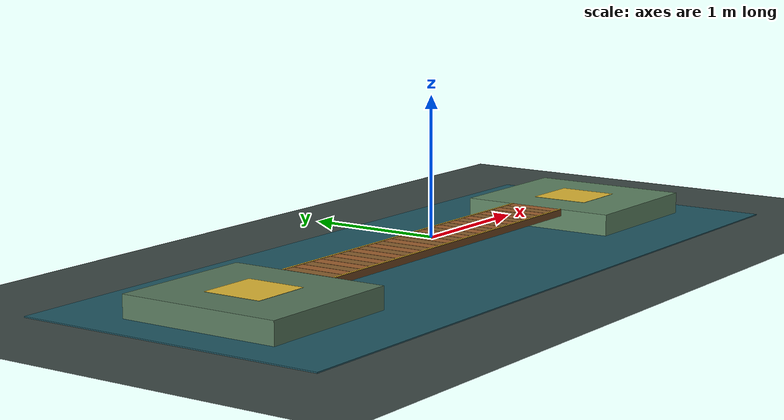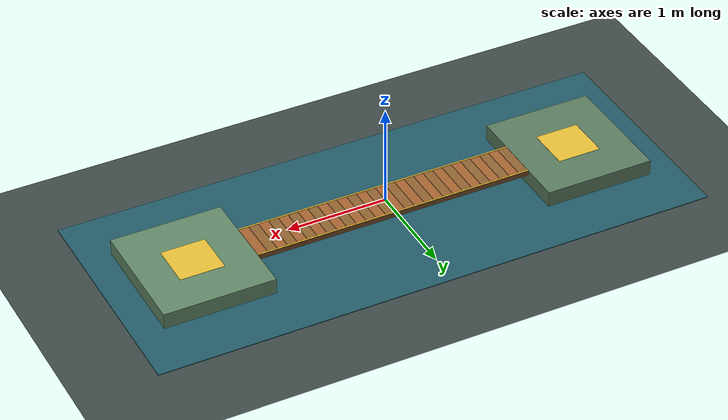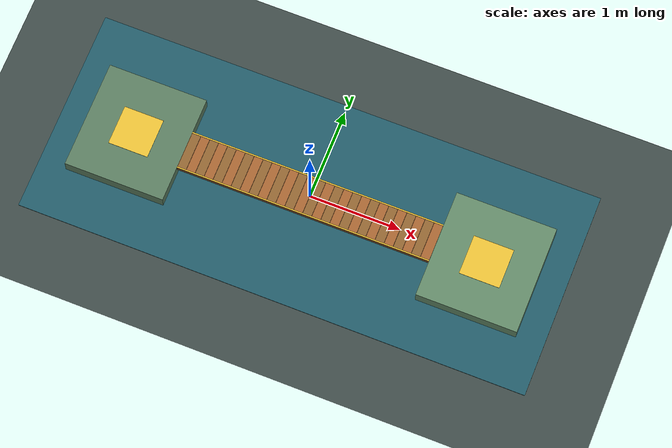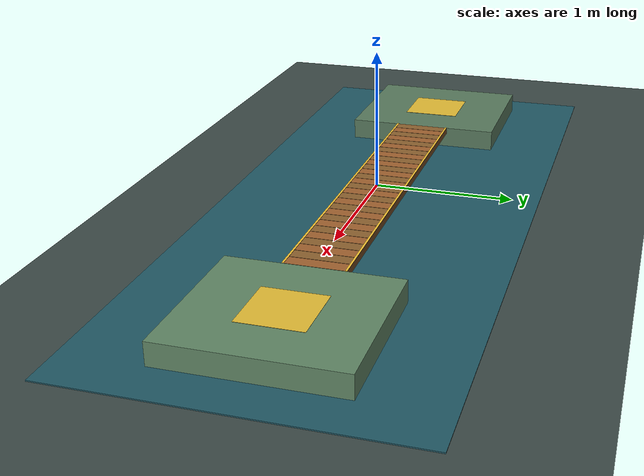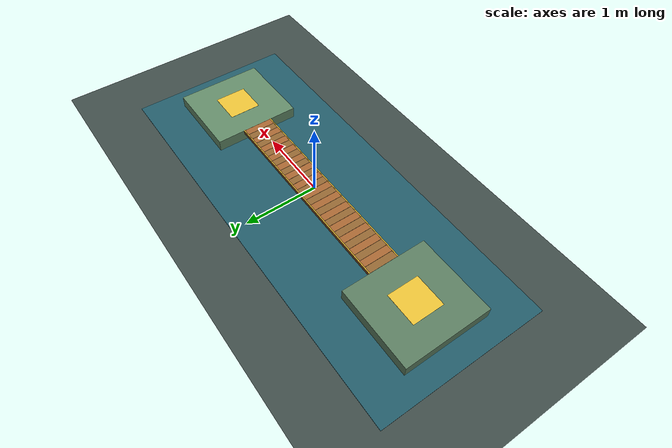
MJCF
<?xml version='1.0' encoding='utf-8'?>
<mujoco model="narrow-bridge"><compiler angle="radian" /><asset><material name="appearance_ground" rgba="0.24 0.29 0.28 1.0" roughness=".9" metallic="0" /><material name="appearance_basin" rgba="0.13 0.35 0.4 1.0" roughness=".9" metallic="0" /><material name="appearance_start_platform" rgba="0.35 0.48 0.37 1.0" roughness=".9" metallic="0" /><material name="appearance_start_paint" rgba="0.9 0.74 0.21 1.0" roughness=".9" metallic="0" /><material name="appearance_exit_platform" rgba="0.38 0.53 0.4 1.0" roughness=".9" metallic="0" /><material name="appearance_exit_paint" rgba="0.9 0.74 0.21 1.0" roughness=".9" metallic="0" /><material name="appearance_bridge_deck" rgba="0.45 0.28 0.13 1.0" roughness=".9" metallic="0" /><material name="appearance_plank_0" rgba="0.56 0.39 0.19 1.0" roughness=".9" metallic="0" /><material name="appearance_plank_1" rgba="0.64 0.39 0.19 1.0" roughness=".9" metallic="0" /><material name="appearance_plank_2" rgba="0.56 0.39 0.19 1.0" roughness=".9" metallic="0" /><material name="appearance_plank_3" rgba="0.64 0.39 0.19 1.0" roughness=".9" metallic="0" /><material name="appearance_plank_4" rgba="0.56 0.39 0.19 1.0" roughness=".9" metallic="0" /><material name="appearance_plank_5" rgba="0.64 0.39 0.19 1.0" roughness=".9" metallic="0" /><material name="appearance_plank_6" rgba="0.56 0.39 0.19 1.0" roughness=".9" metallic="0" /><material name="appearance_plank_7" rgba="0.64 0.39 0.19 1.0" roughness=".9" metallic="0" /><material name="appearance_plank_8" rgba="0.56 0.39 0.19 1.0" roughness=".9" metallic="0" /><material name="appearance_plank_9" rgba="0.64 0.39 0.19 1.0" roughness=".9" metallic="0" /><material name="appearance_plank_10" rgba="0.56 0.39 0.19 1.0" roughness=".9" metallic="0" /><material name="appearance_plank_11" rgba="0.64 0.39 0.19 1.0" roughness=".9" metallic="0" /><material name="appearance_plank_12" rgba="0.56 0.39 0.19 1.0" roughness=".9" metallic="0" /><material name="appearance_plank_13" rgba="0.64 0.39 0.19 1.0" roughness=".9" metallic="0" /><material name="appearance_plank_14" rgba="0.56 0.39 0.19 1.0" roughness=".9" metallic="0" /><material name="appearance_plank_15" rgba="0.64 0.39 0.19 1.0" roughness=".9" metallic="0" /><material name="appearance_plank_16" rgba="0.56 0.39 0.19 1.0" roughness=".9" metallic="0" /><material name="appearance_plank_17" rgba="0.64 0.39 0.19 1.0" roughness=".9" metallic="0" /><material name="appearance_plank_18" rgba="0.56 0.39 0.19 1.0" roughness=".9" metallic="0" /><material name="appearance_plank_19" rgba="0.64 0.39 0.19 1.0" roughness=".9" metallic="0" /><material name="appearance_plank_20" rgba="0.56 0.39 0.19 1.0" roughness=".9" metallic="0" /><material name="appearance_plank_21" rgba="0.64 0.39 0.19 1.0" roughness=".9" metallic="0" /><material name="appearance_plank_22" rgba="0.56 0.39 0.19 1.0" roughness=".9" metallic="0" /><material name="appearance_plank_23" rgba="0.64 0.39 0.19 1.0" roughness=".9" metallic="0" /><material name="appearance_plank_24" rgba="0.56 0.39 0.19 1.0" roughness=".9" metallic="0" /><material name="appearance_plank_25" rgba="0.64 0.39 0.19 1.0" roughness=".9" metallic="0" /><material name="appearance_plank_26" rgba="0.56 0.39 0.19 1.0" roughness=".9" metallic="0" /><material name="appearance_plank_27" rgba="0.64 0.39 0.19 1.0" roughness=".9" metallic="0" /><material name="appearance_edge_-0.208" rgba="0.97 0.77 0.2 1.0" roughness=".9" metallic="0" /><material name="appearance_edge_0.208" rgba="0.97 0.77 0.2 1.0" roughness=".9" metallic="0" /></asset><worldbody><geom name="ground" type="plane" pos="0 0 -0.16" size="20 20 .1" rgba=".24 .29 .28 1" friction="1 .005 .0001" material="appearance_ground" /><light name="sun" pos="0 0 7" dir="0 0 -1" directional="true" diffuse=".25 .25 .25" /><geom name="basin" type="box" pos="0 0 -0.173" size="2.8 1.15 0.015" rgba="0.13 0.35 0.4 1" friction="1 .005 .0001" material="appearance_basin" /><geom name="start_platform" type="box" pos="-1.95 0 -0.08" size="0.55 0.6 0.08" rgba="0.35 0.48 0.37 1" friction="1 .005 .0001" material="appearance_start_platform" /><geom name="start_paint" type="box" pos="-1.95 0 0.001" size="0.22 0.22 0.001" rgba="0.9 0.74 0.21 1" friction="1 .005 .0001" contype="0" conaffinity="0" mass="0" material="appearance_start_paint" /><site name="start" pos="-1.95 0 0.005" size=".20 .20 .005" type="box" rgba="0 0 0 0" /><geom name="exit_platform" type="box" pos="1.95 0 -0.08" size="0.55 0.6 0.08" rgba="0.38 0.53 0.4 1" friction="1 .005 .0001" material="appearance_exit_platform" /><geom name="exit_paint" type="box" pos="1.95 0 0.001" size="0.22 0.22 0.001" rgba="0.9 0.74 0.21 1" friction="1 .005 .0001" contype="0" conaffinity="0" mass="0" material="appearance_exit_paint" /><site name="exit" pos="1.95 0 0.005" size=".20 .20 .005" type="box" rgba="0 0 0 0" /><geom name="bridge_deck" type="box" pos="0 0 -0.025" size="1.4 0.215 0.025" rgba="0.45 0.28 0.13 1" friction="1 .005 .0001" material="appearance_bridge_deck" /><geom name="plank_0" type="box" pos="-1.35 0 0.0005" size="0.048 0.211 0.0005" rgba="0.56 0.39 0.19 1" friction="1 .005 .0001" contype="0" conaffinity="0" mass="0" material="appearance_plank_0" /><geom name="plank_1" type="box" pos="-1.25 0 0.0005" size="0.048 0.211 0.0005" rgba="0.64 0.39 0.19 1" friction="1 .005 .0001" contype="0" conaffinity="0" mass="0" material="appearance_plank_1" /><geom name="plank_2" type="box" pos="-1.1500000000000001 0 0.0005" size="0.048 0.211 0.0005" rgba="0.56 0.39 0.19 1" friction="1 .005 .0001" contype="0" conaffinity="0" mass="0" material="appearance_plank_2" /><geom name="plank_3" type="box" pos="-1.05 0 0.0005" size="0.048 0.211 0.0005" rgba="0.64 0.39 0.19 1" friction="1 .005 .0001" contype="0" conaffinity="0" mass="0" material="appearance_plank_3" /><geom name="plank_4" type="box" pos="-0.9500000000000001 0 0.0005" size="0.048 0.211 0.0005" rgba="0.56 0.39 0.19 1" friction="1 .005 .0001" contype="0" conaffinity="0" mass="0" material="appearance_plank_4" /><geom name="plank_5" type="box" pos="-0.8500000000000001 0 0.0005" size="0.048 0.211 0.0005" rgba="0.64 0.39 0.19 1" friction="1 .005 .0001" contype="0" conaffinity="0" mass="0" material="appearance_plank_5" /><geom name="plank_6" type="box" pos="-0.75 0 0.0005" size="0.048 0.211 0.0005" rgba="0.56 0.39 0.19 1" friction="1 .005 .0001" contype="0" conaffinity="0" mass="0" material="appearance_plank_6" /><geom name="plank_7" type="box" pos="-0.65 0 0.0005" size="0.048 0.211 0.0005" rgba="0.64 0.39 0.19 1" friction="1 .005 .0001" contype="0" conaffinity="0" mass="0" material="appearance_plank_7" /><geom name="plank_8" type="box" pos="-0.55 0 0.0005" size="0.048 0.211 0.0005" rgba="0.56 0.39 0.19 1" friction="1 .005 .0001" contype="0" conaffinity="0" mass="0" material="appearance_plank_8" /><geom name="plank_9" type="box" pos="-0.45000000000000007 0 0.0005" size="0.048 0.211 0.0005" rgba="0.64 0.39 0.19 1" friction="1 .005 .0001" contype="0" conaffinity="0" mass="0" material="appearance_plank_9" /><geom name="plank_10" type="box" pos="-0.3500000000000001 0 0.0005" size="0.048 0.211 0.0005" rgba="0.56 0.39 0.19 1" friction="1 .005 .0001" contype="0" conaffinity="0" mass="0" material="appearance_plank_10" /><geom name="plank_11" type="box" pos="-0.25 0 0.0005" size="0.048 0.211 0.0005" rgba="0.64 0.39 0.19 1" friction="1 .005 .0001" contype="0" conaffinity="0" mass="0" material="appearance_plank_11" /><geom name="plank_12" type="box" pos="-0.1499999999999999 0 0.0005" size="0.048 0.211 0.0005" rgba="0.56 0.39 0.19 1" friction="1 .005 .0001" contype="0" conaffinity="0" mass="0" material="appearance_plank_12" /><geom name="plank_13" type="box" pos="-0.050000000000000044 0 0.0005" size="0.048 0.211 0.0005" rgba="0.64 0.39 0.19 1" friction="1 .005 .0001" contype="0" conaffinity="0" mass="0" material="appearance_plank_13" /><geom name="plank_14" type="box" pos="0.050000000000000044 0 0.0005" size="0.048 0.211 0.0005" rgba="0.56 0.39 0.19 1" friction="1 .005 .0001" contype="0" conaffinity="0" mass="0" material="appearance_plank_14" /><geom name="plank_15" type="box" pos="0.1499999999999999 0 0.0005" size="0.048 0.211 0.0005" rgba="0.64 0.39 0.19 1" friction="1 .005 .0001" contype="0" conaffinity="0" mass="0" material="appearance_plank_15" /><geom name="plank_16" type="box" pos="0.25 0 0.0005" size="0.048 0.211 0.0005" rgba="0.56 0.39 0.19 1" friction="1 .005 .0001" contype="0" conaffinity="0" mass="0" material="appearance_plank_16" /><geom name="plank_17" type="box" pos="0.3500000000000001 0 0.0005" size="0.048 0.211 0.0005" rgba="0.64 0.39 0.19 1" friction="1 .005 .0001" contype="0" conaffinity="0" mass="0" material="appearance_plank_17" /><geom name="plank_18" type="box" pos="0.44999999999999996 0 0.0005" size="0.048 0.211 0.0005" rgba="0.56 0.39 0.19 1" friction="1 .005 .0001" contype="0" conaffinity="0" mass="0" material="appearance_plank_18" /><geom name="plank_19" type="box" pos="0.55 0 0.0005" size="0.048 0.211 0.0005" rgba="0.64 0.39 0.19 1" friction="1 .005 .0001" contype="0" conaffinity="0" mass="0" material="appearance_plank_19" /><geom name="plank_20" type="box" pos="0.6499999999999999 0 0.0005" size="0.048 0.211 0.0005" rgba="0.56 0.39 0.19 1" friction="1 .005 .0001" contype="0" conaffinity="0" mass="0" material="appearance_plank_20" /><geom name="plank_21" type="box" pos="0.75 0 0.0005" size="0.048 0.211 0.0005" rgba="0.64 0.39 0.19 1" friction="1 .005 .0001" contype="0" conaffinity="0" mass="0" material="appearance_plank_21" /><geom name="plank_22" type="box" pos="0.8500000000000001 0 0.0005" size="0.048 0.211 0.0005" rgba="0.56 0.39 0.19 1" friction="1 .005 .0001" contype="0" conaffinity="0" mass="0" material="appearance_plank_22" /><geom name="plank_23" type="box" pos="0.9500000000000002 0 0.0005" size="0.048 0.211 0.0005" rgba="0.64 0.39 0.19 1" friction="1 .005 .0001" contype="0" conaffinity="0" mass="0" material="appearance_plank_23" /><geom name="plank_24" type="box" pos="1.0500000000000003 0 0.0005" size="0.048 0.211 0.0005" rgba="0.56 0.39 0.19 1" friction="1 .005 .0001" contype="0" conaffinity="0" mass="0" material="appearance_plank_24" /><geom name="plank_25" type="box" pos="1.15 0 0.0005" size="0.048 0.211 0.0005" rgba="0.64 0.39 0.19 1" friction="1 .005 .0001" contype="0" conaffinity="0" mass="0" material="appearance_plank_25" /><geom name="plank_26" type="box" pos="1.25 0 0.0005" size="0.048 0.211 0.0005" rgba="0.56 0.39 0.19 1" friction="1 .005 .0001" contype="0" conaffinity="0" mass="0" material="appearance_plank_26" /><geom name="plank_27" type="box" pos="1.35 0 0.0005" size="0.048 0.211 0.0005" rgba="0.64 0.39 0.19 1" friction="1 .005 .0001" contype="0" conaffinity="0" mass="0" material="appearance_plank_27" /><geom name="edge_-0.208" type="box" pos="0 -0.208 0.002" size="1.4 0.007 0.002" rgba="0.97 0.77 0.2 1" friction="1 .005 .0001" contype="0" conaffinity="0" mass="0" material="appearance_edge_-0.208" /><geom name="edge_0.208" type="box" pos="0 0.208 0.002" size="1.4 0.007 0.002" rgba="0.97 0.77 0.2 1" friction="1 .005 .0001" contype="0" conaffinity="0" mass="0" material="appearance_edge_0.208" /></worldbody></mujoco>
